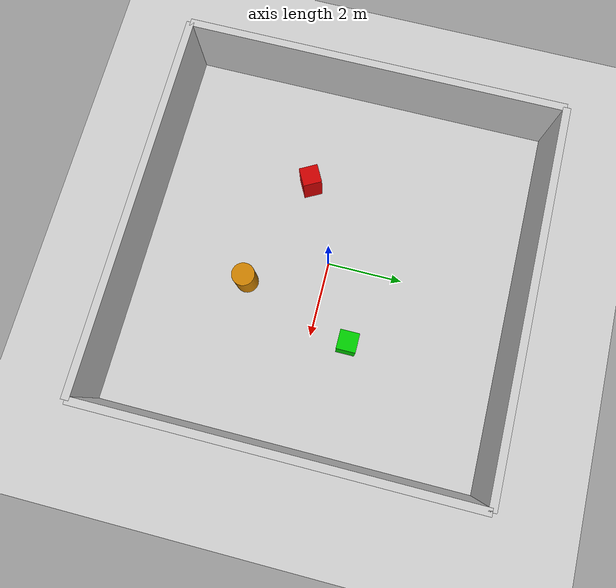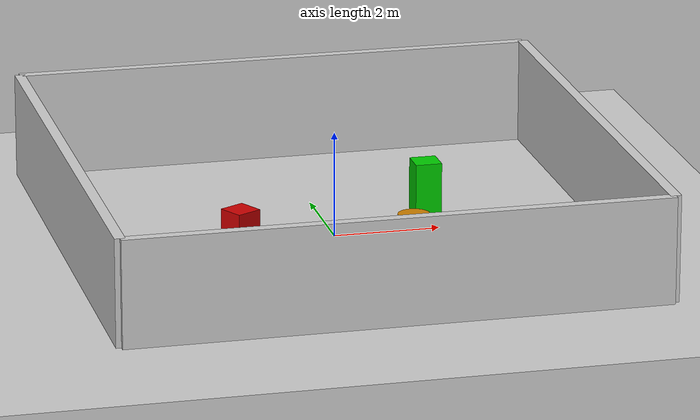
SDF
<?xml version="1.0"?>
<sdf version="1.6">
  <world name="my_world">

    <!-- 기본 물리 -->
    <physics type="ode">
      <real_time_update_rate>1000.0</real_time_update_rate>
      <max_step_size>0.001</max_step_size>
    </physics>

    <!-- 플러그인 -->
    <plugin name="gazebo_ros_state" filename="libgazebo_ros_state.so"/>

    <!-- 조명 -->
    <include>
      <uri>model://sun</uri>
    </include>

    <!-- 바닥 -->
    <include>
      <uri>model://ground_plane</uri>
    </include>

    <!-- 벽 (LiDAR 테스트용) -->
    <model name="wall_north">
      <static>true</static>
      <pose>5 0 1 0 0 0</pose>
      <link name="link">
        <collision name="collision">
          <geometry><box><size>0.2 10 2</size></box></geometry>
        </collision>
        <visual name="visual">
          <geometry><box><size>0.2 10 2</size></box></geometry>
          <material>
            <ambient>0.8 0.8 0.8 1</ambient>
          </material>
        </visual>
      </link>
    </model>

    <model name="wall_south">
      <static>true</static>
      <pose>-5 0 1 0 0 0</pose>
      <link name="link">
        <collision name="collision">
          <geometry><box><size>0.2 10 2</size></box></geometry>
        </collision>
        <visual name="visual">
          <geometry><box><size>0.2 10 2</size></box></geometry>
          <material>
            <ambient>0.8 0.8 0.8 1</ambient>
          </material>
        </visual>
      </link>
    </model>

    <model name="wall_east">
      <static>true</static>
      <pose>0 5 1 0 0 0</pose>
      <link name="link">
        <collision name="collision">
          <geometry><box><size>10 0.2 2</size></box></geometry>
        </collision>
        <visual name="visual">
          <geometry><box><size>10 0.2 2</size></box></geometry>
          <material>
            <ambient>0.8 0.8 0.8 1</ambient>
          </material>
        </visual>
      </link>
    </model>

    <model name="wall_west">
      <static>true</static>
      <pose>0 -5 1 0 0 0</pose>
      <link name="link">
        <collision name="collision">
          <geometry><box><size>10 0.2 2</size></box></geometry>
        </collision>
        <visual name="visual">
          <geometry><box><size>10 0.2 2</size></box></geometry>
          <material>
            <ambient>0.8 0.8 0.8 1</ambient>
          </material>
        </visual>
      </link>
    </model>

    <!-- 장애물 박스들 -->
    <model name="box1">
      <static>true</static>
      <pose>2 1 0.5 0 0 0</pose>
      <link name="link">
        <collision name="collision">
          <geometry><box><size>0.5 0.5 1.0</size></box></geometry>
        </collision>
        <visual name="visual">
          <geometry><box><size>0.5 0.5 1.0</size></box></geometry>
          <material><ambient>0 0.8 0 1</ambient></material>
        </visual>
      </link>
    </model>

    <model name="box2">
      <static>true</static>
      <pose>-2 -1 0.5 0 0 0.5</pose>
      <link name="link">
        <collision name="collision">
          <geometry><box><size>0.5 0.5 1.0</size></box></geometry>
        </collision>
        <visual name="visual">
          <geometry><box><size>0.5 0.5 1.0</size></box></geometry>
          <material><ambient>0.8 0 0 1</ambient></material>
        </visual>
      </link>
    </model>

    <model name="cylinder1">
      <static>true</static>
      <pose>1 -2 0.5 0 0 0</pose>
      <link name="link">
        <collision name="collision">
          <geometry><cylinder><radius>0.3</radius><length>1.0</length></cylinder></geometry>
        </collision>
        <visual name="visual">
          <geometry><cylinder><radius>0.3</radius><length>1.0</length></cylinder></geometry>
          <material><ambient>0.8 0.5 0 1</ambient></material>
        </visual>
      </link>
    </model>

  </world>
</sdf>
